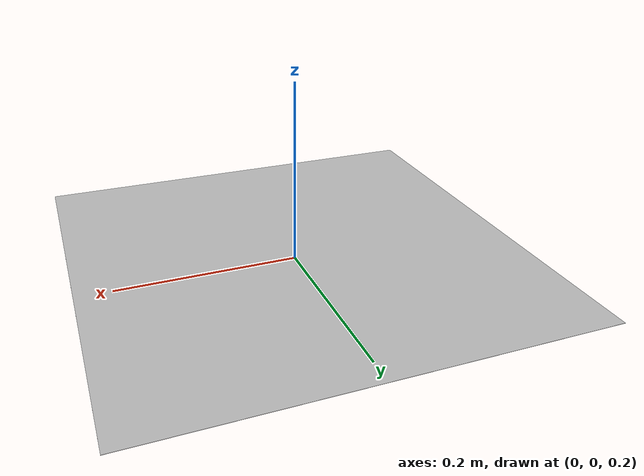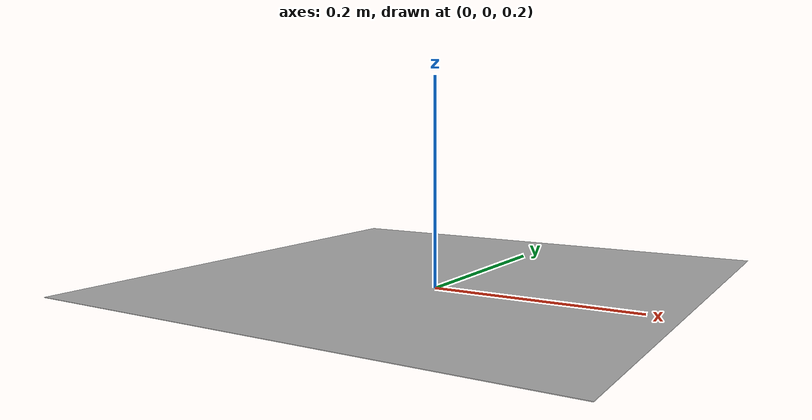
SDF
<?xml version="1.0" encoding="UTF-8"?>
<sdf version="1.4">
   <model name="parking_apron_green">
      <static>true</static>
      <link name="link">
         <collision name="collision">
            <geometry>
               <plane>
                  <normal>0 0 1</normal>
                  <size>0.48 0.48</size>
               </plane>
            </geometry>
            <surface>
               <friction>
                  <ode>
                     <mu>100</mu>
                     <mu2>50</mu2>
                  </ode>
               </friction>
            </surface>
         </collision>
         <visual name="visual">
            <pose frame=''>0 0 0.21 0 -0 0</pose>
            <cast_shadows>false</cast_shadows>
            <geometry>
               <plane>
                  <normal>0 0 1</normal>
                  <size>0.48 0.48</size>
               </plane>
            </geometry>
            <material>
               <script>
                  <uri>model://parking_apron_green/materials/scripts</uri>
                  <uri>model://parking_apron_green/materials/textures/</uri>
                  <name>parking_apron_green/Image</name>
               </script>
            </material>
         </visual>
      </link>
   </model>
</sdf>
